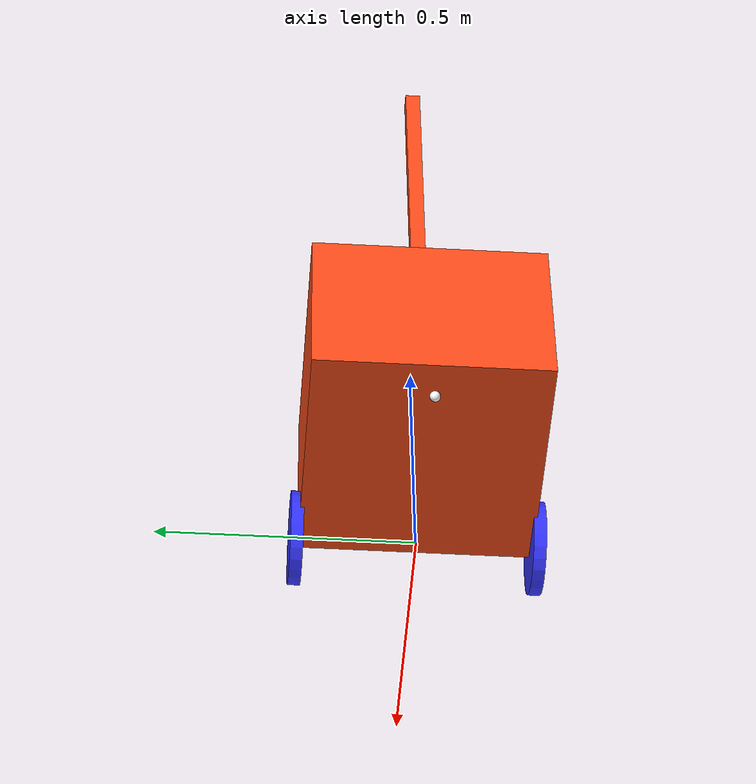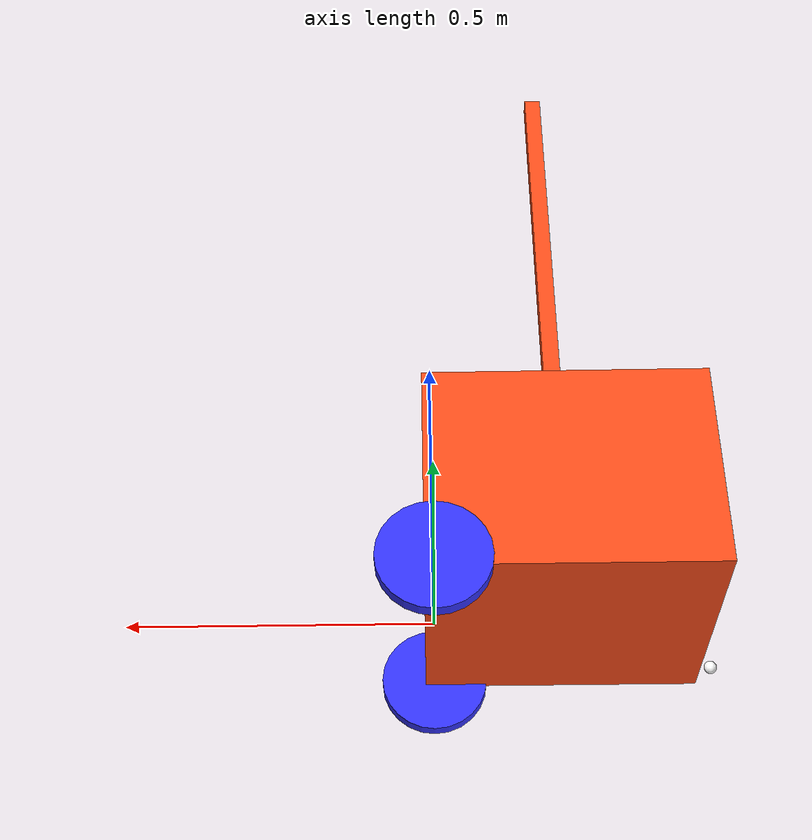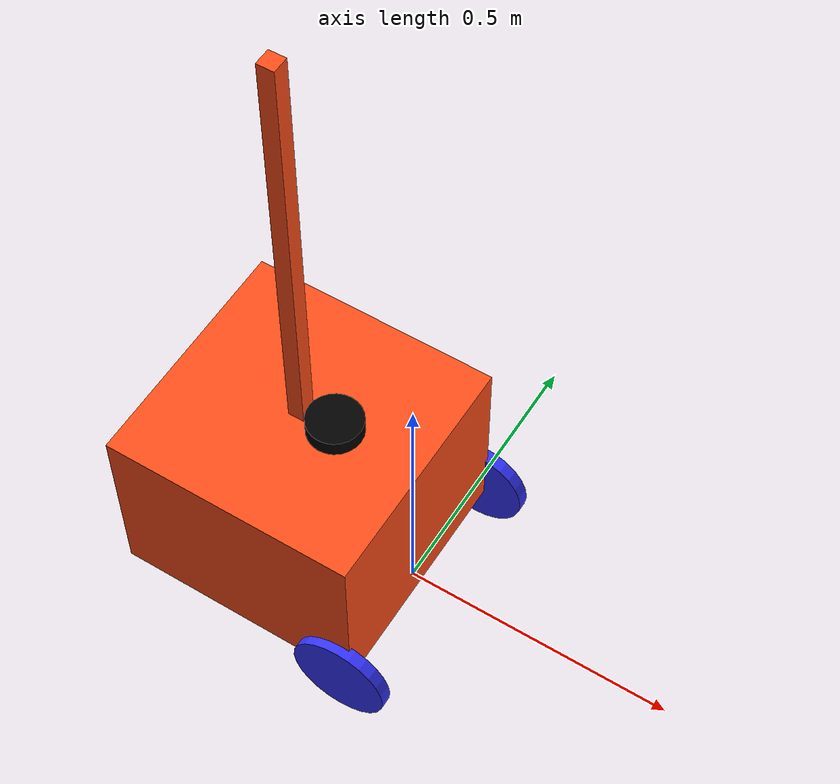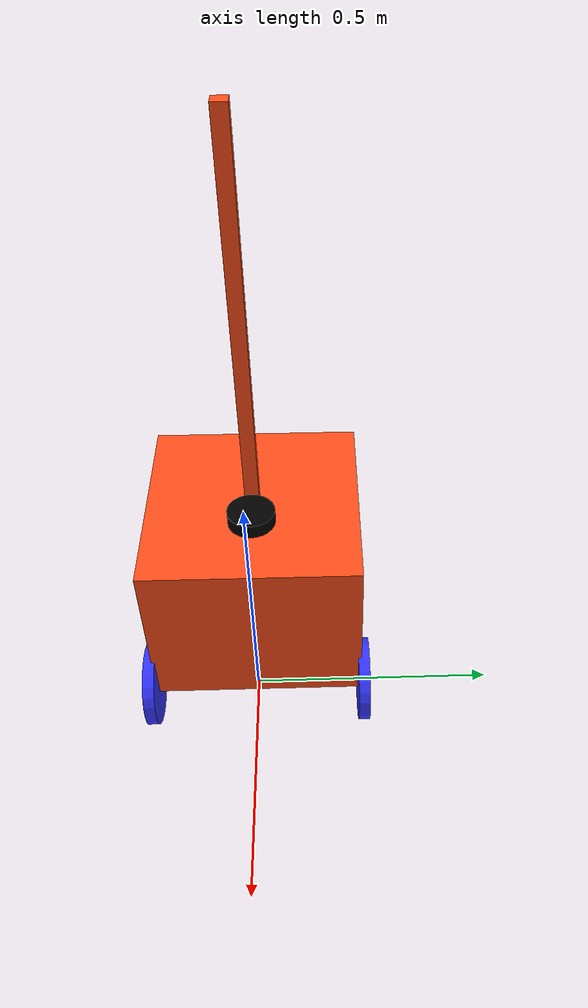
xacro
<?xml version="1.0"?>
<robot xmlns:xacro="http://www.ros.org/wiki/xacro"  name="robot">

    <xacro:arg name="use_ros2_control" default="true"/>
    <xacro:arg name="sim_mode" default="false"/>

    <xacro:include filename="robot_core.xacro" />

    <xacro:if value="$(arg use_ros2_control)">
        <xacro:include filename="ros2_control.xacro" />
    </xacro:if>
    <xacro:unless value="$(arg use_ros2_control)">
        <xacro:include filename="gazebo_control.xacro" />
    </xacro:unless>

    <xacro:include filename="lidar.xacro" />

</robot>

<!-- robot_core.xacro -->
<robot xmlns:xacro="http://www.ros.org/wiki/xacro" >

    <xacro:include filename="inertial_macros.xacro"/>

    <xacro:property name="chassis_length" value="0.465"/>
    <xacro:property name="chassis_width" value="0.450"/>
    <xacro:property name="chassis_height" value="0.350"/>
    <xacro:property name="chassis_mass" value="15.0"/>
    <xacro:property name="wheel_radius" value="0.090"/>
    <xacro:property name="wheel_thickness" value="0.024"/>
    <xacro:property name="wheel_mass" value="0.5"/>
    <xacro:property name="wheel_offset_x" value="0.45"/>
    <xacro:property name="wheel_offset_y" value="0.23"/>
    <xacro:property name="wheel_offset_z" value="0.01"/>
    <xacro:property name="caster_wheel_radius" value="0.01"/>
    <xacro:property name="caster_wheel_mass" value="0.01"/>
    <xacro:property name="caster_wheel_offset_x" value="0.015"/>
    <xacro:property name="caster_wheel_offset_z" value="-0.07"/>

    <material name="white">
        <color rgba="1 1 1 1" />
    </material>

    <material name="orange">
        <color rgba="1 0.3 0.1 1"/>
    </material>

    <material name="blue">
        <color rgba="0.2 0.2 1 1"/>
    </material>

    <material name="black">
        <color rgba="0 0 0 1"/>
    </material>

    <material name="red">
        <color rgba="1 0 0 1"/>
    </material>

    <!-- BASE LINK -->

    <link name="base_link">

    </link>

    <!-- BASE_FOOTPRINT LINK -->

    <joint name="base_footprint_joint" type="fixed">
        <parent link="base_link"/>
        <child link="base_footprint"/>
        <origin xyz="0 0 0" rpy="0 0 0"/>
    </joint>

    <link name="base_footprint">
    </link>

    <!-- Pole -->

    <joint name="pole_joint" type="fixed">
        <parent link="base_link"/>
        <child link="pole"/>
        <origin xyz="-0.45 0 0.56" rpy="0 0 0"/>
    </joint>

    <link name="pole">
        <visual>
            <origin xyz="${chassis_length/2} 0 ${chassis_height/2}"/>
            <geometry>
                <box size="0.03 0.03 0.84"/>
            </geometry>
            <material name="orange"/>
        </visual>
        <collision>
            <origin xyz="${chassis_length/2} 0 ${chassis_height/2}"/>
            <geometry>
                <box size="0.03 0.03 0.84"/>
            </geometry>
        </collision>
        <xacro:inertial_box mass="0.5" x="0.03" y="0.03" z="00.84">
            <origin xyz="${chassis_length/2} 0 ${chassis_height/2}" rpy="0 0 0"/>
        </xacro:inertial_box>
    </link>

    <!-- CHASSIS LINK -->

    <joint name="chassis_joint" type="fixed">
        <parent link="base_link"/>
        <child link="chassis"/>
        <origin xyz="${-wheel_offset_x} 0 ${-wheel_offset_z}"/>
    </joint>

    <link name="chassis">
        <visual>
            <origin xyz="${chassis_length/2} 0 ${chassis_height/2}"/>
            <geometry>
                <box size="${chassis_length} ${chassis_width} ${chassis_height}"/>
            </geometry>
            <material name="orange"/>
        </visual>
        <collision>
            <origin xyz="${chassis_length/2} 0 ${chassis_height/2}"/>
            <geometry>
                <box size="${chassis_length} ${chassis_width} ${chassis_height}"/>
            </geometry>
        </collision>
        <xacro:inertial_box mass="0.5" x="${chassis_length}" y="${chassis_width}" z="${chassis_height}">
            <origin xyz="${chassis_length/2} 0 ${chassis_height/2}" rpy="0 0 0"/>
        </xacro:inertial_box>
    </link>

    <gazebo reference="chassis">
        <material>Gazebo/Orange</material>
    </gazebo>

    <!-- LEFT WHEEL LINK -->

    <joint name="left_wheel_joint" type="continuous">
        <parent link="base_link"/>
        <child link="left_wheel"/>
        <origin xyz="0 ${wheel_offset_y} 0" rpy="-${pi/2} 0 0" />
        <axis xyz="0 0 1"/>
    </joint>

    <link name="left_wheel">
        <visual>
            <geometry>
                <cylinder radius="${wheel_radius}" length="${wheel_thickness}"/>
            </geometry>
            <material name="blue"/>
        </visual>
        <collision>
            <geometry>
                <sphere radius="${wheel_radius}"/>
            </geometry>
        </collision>
        <xacro:inertial_cylinder mass="${wheel_mass}" length="${wheel_thickness}" radius="${wheel_radius}">
            <origin xyz="0 0 0" rpy="0 0 0"/>
        </xacro:inertial_cylinder>
    </link>

    <gazebo reference="left_wheel">
        <material>Gazebo/Blue</material>
    </gazebo>

    <!-- RIGHT WHEEL LINK -->

    <joint name="right_wheel_joint" type="continuous">
        <parent link="base_link"/>
        <child link="right_wheel"/>
        <origin xyz="0 ${-wheel_offset_y} 0" rpy="${pi/2} 0 0" />
        <axis xyz="0 0 -1"/>
    </joint>

    <link name="right_wheel">
        <visual>
            <geometry>
                <cylinder radius="${wheel_radius}" length="${wheel_thickness}"/>
            </geometry>
            <material name="blue"/>
        </visual>
        <collision>
            <geometry>
                <sphere radius="${wheel_radius}"/>
            </geometry>
        </collision>
        <xacro:inertial_cylinder mass="${wheel_mass}" length="${wheel_thickness}" radius="${wheel_radius}">
            <origin xyz="0 0 0" rpy="0 0 0"/>
        </xacro:inertial_cylinder>
    </link>

    <gazebo reference="right_wheel">
        <material>Gazebo/Blue</material>
    </gazebo>

    <!-- CASTER WHEEL LINK -->

    <joint name="caster_wheel_joint" type="fixed">
        <parent link="chassis"/>
        <child link="caster_wheel"/>
        <origin xyz="${caster_wheel_offset_x} 0 ${caster_wheel_offset_z}"/>
    </joint>

    <link name="caster_wheel">
        <visual>
            <geometry>
                <sphere radius="${caster_wheel_radius}"/>
            </geometry>
            <material name="white"/>
        </visual>
        <collision>
            <geometry>
                <sphere radius="${caster_wheel_radius}"/>
            </geometry>
        </collision>
        <xacro:inertial_sphere mass="${caster_wheel_mass}" radius="${caster_wheel_radius}">
            <origin xyz="0 0 0" rpy="0 0 0"/>
        </xacro:inertial_sphere>
    </link>

    <gazebo reference="caster_wheel">
        <material>Gazebo/White</material>
        <mu1 value="0.001"/>
        <mu2 value="0.001"/>
    </gazebo>

</robot>

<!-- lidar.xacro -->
<robot xmlns:xacro="http://www.ros.org/wiki/xacro" >

    <joint name="laser_joint" type="fixed">
        <parent link="chassis"/>
        <child link="laser_frame"/>
        <origin xyz="0.3 0 0.36" rpy="0 0 0"/>
    </joint>

    <link name="laser_frame">
        <visual>
            <geometry>
                <cylinder radius="0.05" length="0.04"/>
            </geometry>
            <material name="black"/>
        </visual>
        <collision>
            <geometry>
                <cylinder radius="0.05" length="0.04"/>
            </geometry>
        </collision>
        <xacro:inertial_cylinder mass="0.1" length="0.04" radius="0.05">
            <origin xyz="0 0 0" rpy="0 0 0"/>
        </xacro:inertial_cylinder>
    </link>

    <gazebo reference="laser_frame">
        <material>Gazebo/Black</material>

        <sensor name="laser" type="ray">
            <pose> 0 0 0 0 0 0 </pose>
            <visualize>false</visualize>
            <update_rate>10</update_rate>
            <ray>
                <scan>
                    <horizontal>
                        <samples>360</samples>
                        <min_angle>-3.14</min_angle>
                        <max_angle>3.14</max_angle>
                    </horizontal>
                </scan>
                <range>
                    <min>0.3</min>
                    <max>12</max>
                </range>
            </ray>
            <plugin name="laser_controller" filename="libgazebo_ros_ray_sensor.so">
                <ros>
                    <argument>~/out:=scan</argument>
                </ros>
                <output_type>sensor_msgs/LaserScan</output_type>
                <frame_name>laser_frame</frame_name>
            </plugin>
        </sensor>
    </gazebo>

</robot>
